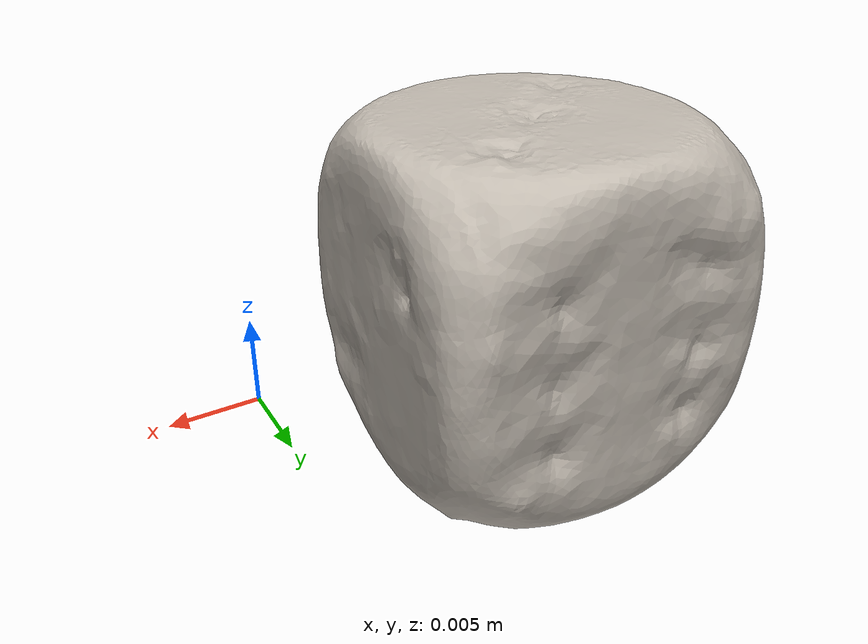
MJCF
<mujoco model="dice">
  <compiler angle="radian" meshdir="assets" texturedir="assets"/>
    <default>
        <default class="ycb_col">
            <geom contype="1" conaffinity="1" group="3" rgba=".4 .5 .6 1"/>
        </default>
        <default class="ycb_viz">
            <geom contype="0" conaffinity="0" type="mesh" mass="0"/>
        </default>
    </default>
  <asset>
    <texture type="2d" name="dice_tex" file="texture_map.png"/>
    <material name="dice_mat" texture="dice_tex" specular="0.5" shininess="0.5"/>
    <mesh file="textured.obj" name="dice"/>
    <mesh file="textured_collision_0.obj" name="dice_collision_0"/>
  </asset>
  <worldbody>
      <geom material="dice_mat" mesh="dice" class="ycb_viz"/>
      <geom mesh="dice_collision_0" class="ycb_col" conaffinity="1" condim="4" friction="0.1 0.1 0.1" mass="0.0052" rgba="1 1 1 1" solimp="0.99 0.99 0.01" solref=".001 0.1" type="mesh" group="3"/>
  </worldbody>
</mujoco>
